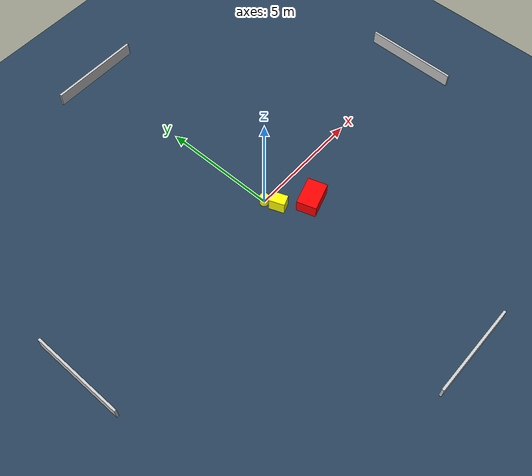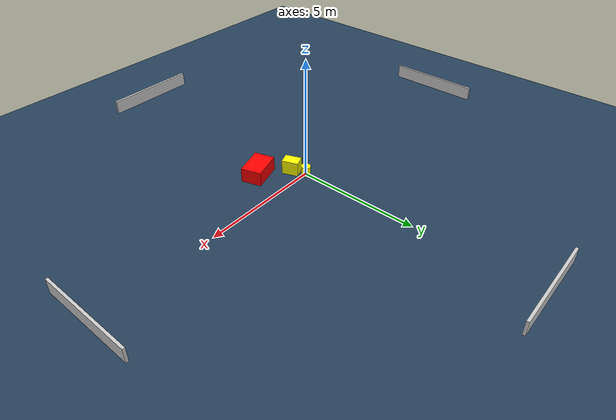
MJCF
<?xml version="1.0" ?>
<mujoco model="generated_environment">
  <option timestep="0.01" integrator="RK4" cone="elliptic"/>
  <default>
    <geom density="1"/>
  </default>
  <asset>
    <texture builtin="gradient" height="3072" name="skybox" rgb1="0.3 0.5 0.7" rgb2="0 0 0" type="skybox" width="512"/>
    <texture builtin="checker" height="300" name="groundplane" rgb1="0.2 0.3 0.4" rgb2="0.1 0.2 0.3" type="2d" width="300"/>
    <material name="groundplane" reflectance="0.2" texrepeat="5 5" texture="groundplane"/>
  </asset>
  <worldbody>
    <light dir="0 0 -1" directional="true" pos="0 0 1.5"/>
    <geom condim="3" friction="0.5 0.005 0.001" material="groundplane" name="floor" pos="0 0 0" size="0 0 0.05" type="plane"/>
    <body name="walls">
      <geom name="wall_1" condim="4" pos="-10.0 0.0 0.3" rgba="0.800000011920929 0.800000011920929 0.800000011920929 1.0" size="0.05 2.0 0.3" type="box"/>
      <geom name="wall_2" condim="4" pos="10.0 0.0 0.3" rgba="0.800000011920929 0.800000011920929 0.800000011920929 1.0" size="0.05 2.0 0.3" type="box"/>
      <geom name="wall_3" condim="4" pos="0.0 -10.0 0.3" rgba="0.800000011920929 0.800000011920929 0.800000011920929 1.0" size="2.0 0.05 0.3" type="box"/>
      <geom name="wall_4" condim="4" pos="0.0 10.0 0.3" rgba="0.800000011920929 0.800000011920929 0.800000011920929 1.0" size="2.0 0.05 0.3" type="box"/>
    </body>
    <body name="robot">
      <joint name="joint_x" type="slide" pos="0 0 0" axis="1 0 0"/>
      <joint name="joint_y" type="slide" pos="0 0 0" axis="0 1 0"/>
      <geom name="robot" type="cylinder" pos="0.0 0.0 0.2" size="0.2 0.2 0.0" mass="5.0" friction="1.0 0.005 0.0001" condim="4" rgba="1.0 1.0 0.0 1.0"/>
    </body>
    <body name="obstacle_1_movable">
      <geom name="obstacle_1_movable" condim="4" pos="0.2307927953264095 -0.5504419370153785 0.3" euler="0 0 290.82835730295164" friction="0.0 0.005 0.001" rgba="1.0 1.0 0.0 1.0" size="0.3356146949235036 0.23789846403356293 0.3" type="box" mass="0.1"/>
      <joint type="free"/>
    </body>
    <body name="obstacle_2_static">
      <geom name="obstacle_2_static" condim="4" pos="1.2929389201101995 -1.4113163558844486 0.3" euler="0 0 17.677737130312128" friction="0.0 0.005 0.001" rgba="1.0 0.0 0.0 1.0" size="0.6223462371325925 0.421927880326231 0.3" type="box"/>
    </body>
  </worldbody>
  <actuator>
    <motor name="actuator_x" joint="joint_x" gear="1" ctrlrange="-1 1"/>
    <motor name="actuator_y" joint="joint_y" gear="1" ctrlrange="-1 1"/>
  </actuator>
</mujoco>
